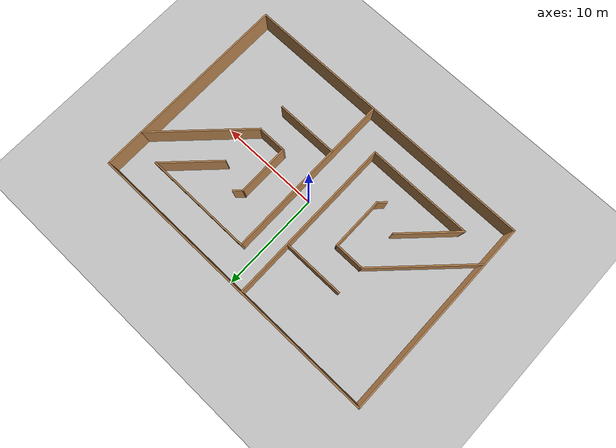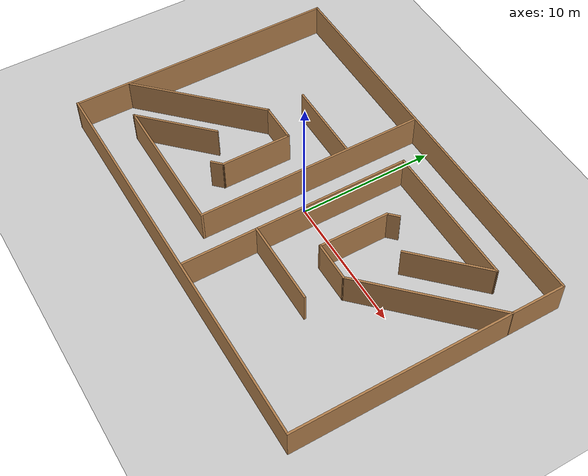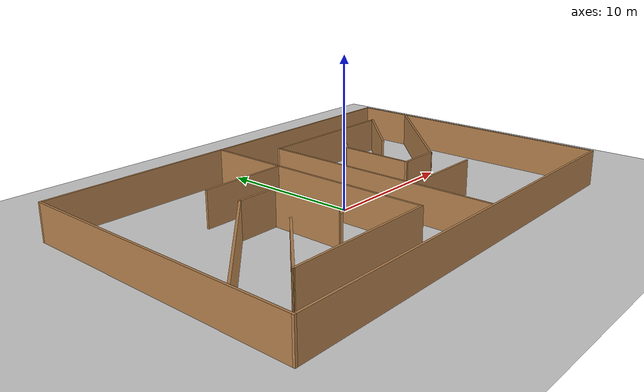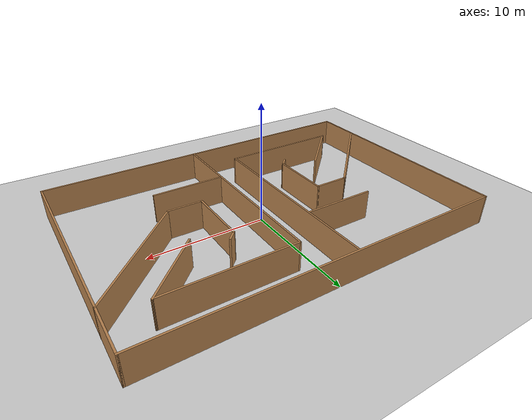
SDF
<sdf version="1.6">
 <world name="default">
  <light name="sun" type="directional">
   <pose>0 0 10 0 -0 0</pose>
   <diffuse>0.8 0.8 0.8 1</diffuse>
   <specular>0.2 0.2 0.2 1</specular>
   <attenuation>
    <range>1000</range>
    <constant>0.9</constant>
    <linear>0.01</linear>
    <quadratic>0.001</quadratic>
   </attenuation>
   <direction>-0.5 0.1 -0.9</direction>
  </light>
  <model name="ground_plane">
   <static>1</static>
   <link name="link">
    <collision name="collision">
     <geometry><plane><normal>0 0 1</normal><size>100 100</size></plane></geometry>
     <surface>
      <contact><collide_bitmask>65535</collide_bitmask></contact>
      <friction><ode><mu>100</mu><mu2>50</mu2></ode></friction>
     </surface>
    </collision>
    <visual name="visual">
     <cast_shadows>0</cast_shadows>
     <geometry><plane><normal>0 0 1</normal><size>100 100</size></plane></geometry>
     <material>
      <script><uri>file://media/materials/scripts/gazebo.material</uri><name>Gazebo/Grey</name></script>
     </material>
    </visual>
   </link>
  </model>
  <gravity>0 0 -9.8</gravity>
  <magnetic_field>6e-06 2.3e-05 -4.2e-05</magnetic_field>
  <atmosphere type="adiabatic"/>
  <physics name="default_physics" default="0" type="ode">
   <max_step_size>0.001</max_step_size>
   <real_time_factor>1</real_time_factor>
   <real_time_update_rate>1000</real_time_update_rate>
  </physics>
  <scene><ambient>0.4 0.4 0.4 1</ambient><background>0.7 0.7 0.7 1</background><shadows>1</shadows></scene>
  <spherical_coordinates>
   <surface_model>EARTH_WGS84</surface_model>
   <latitude_deg>0</latitude_deg>
   <longitude_deg>0</longitude_deg>
   <elevation>0</elevation>
   <heading_deg>0</heading_deg>
  </spherical_coordinates>
  <physics name="default_physics" default="0" type="ode">
   <ode>
    <solver>
     <type>quick</type>
     <iters>20</iters>
     <sor>1.3</sor>
     <use_dynamic_moi_rescaling>0</use_dynamic_moi_rescaling>
    </solver>
    <constraints>
     <cfm>0</cfm>
     <erp>0.2</erp>
     <contact_max_correcting_vel>100</contact_max_correcting_vel>
     <contact_surface_layer>0.001</contact_surface_layer>
    </constraints>
   </ode>
   <max_step_size>0.002</max_step_size>
   <real_time_factor>1</real_time_factor>
   <real_time_update_rate>500</real_time_update_rate>
  </physics>
  <audio><device>default</device></audio>
  <model name="office_maze">
   <link name="Wall_2">
    <collision name="Wall_2_Collision">
     <geometry><box><size>30 0.15 2.5</size></box></geometry>
     <pose>0 0 1.25 0 -0 0</pose>
    </collision>
    <visual name="Wall_2_Visual">
     <pose>0 0 1.25 0 -0 0</pose>
     <geometry><box><size>30 0.15 2.5</size></box></geometry>
     <material>
      <script><uri>file://media/materials/scripts/gazebo.material</uri><name>Gazebo/Wood</name></script>
      <ambient>1 1 1 1</ambient>
     </material>
    </visual>
    <pose>-0.01144 9.925 0 0 -0 0</pose>
   </link>
   <link name="Wall_24">
    <collision name="Wall_24_Collision">
     <geometry><box><size>17 0.15 2.5</size></box></geometry>
     <pose>0 0 1.25 0 -0 0</pose>
    </collision>
    <visual name="Wall_24_Visual">
     <pose>0 0 1.25 0 -0 0</pose>
     <geometry><box><size>17 0.15 2.5</size></box></geometry>
     <material>
      <script><uri>file://media/materials/scripts/gazebo.material</uri><name>Gazebo/Wood</name></script>
      <ambient>1 1 1 1</ambient>
     </material>
    </visual>
    <pose>1.30871 -1.38174 0 0 0 -1.5708</pose>
   </link>
   <link name="Wall_26">
    <collision name="Wall_26_Collision">
     <geometry><box><size>17 0.15 2.5</size></box></geometry>
     <pose>0 0 1.25 0 -0 0</pose>
    </collision>
    <visual name="Wall_26_Visual">
     <pose>0 0 1.25 0 -0 0</pose>
     <geometry><box><size>17 0.15 2.5</size></box></geometry>
     <material>
      <script><uri>file://media/materials/scripts/gazebo.material</uri><name>Gazebo/Wood</name></script>
      <ambient>1 1 1 1</ambient>
     </material>
    </visual>
    <pose>-1.5178 1.48266 0 0 0 -1.5708</pose>
   </link>
   <link name="Wall_27">
    <collision name="Wall_27_Collision">
     <geometry><box><size>10.5 0.15 2.5</size></box></geometry>
     <pose>0 0 1.25 0 -0 0</pose>
    </collision>
    <visual name="Wall_27_Visual">
     <pose>0 0 1.25 0 -0 0</pose>
     <geometry><box><size>10.5 0.15 2.5</size></box></geometry>
     <material>
      <script><uri>file://media/materials/scripts/gazebo.material</uri><name>Gazebo/Wood</name></script>
      <ambient>1 1 1 1</ambient>
     </material>
    </visual>
    <pose>-6.6928 -6.94234 0 0 -0 3.14159</pose>
   </link>
   <link name="Wall_29">
    <collision name="Wall_29_Collision">
     <geometry><box><size>10.75 0.15 2.5</size></box></geometry>
     <pose>0 0 1.25 0 -0 0</pose>
    </collision>
    <visual name="Wall_29_Visual">
     <pose>0 0 1.25 0 -0 0</pose>
     <geometry><box><size>10.75 0.15 2.5</size></box></geometry>
     <material>
      <script><uri>file://media/materials/scripts/gazebo.material</uri><name>Gazebo/Wood</name></script>
      <ambient>1 1 1 1</ambient>
     </material>
    </visual>
    <pose>6.60871 7.04326 0 0 -0 0</pose>
   </link>
   <link name="Wall_3">
    <collision name="Wall_3_Collision">
     <geometry><box><size>20 0.15 2.5</size></box></geometry>
     <pose>0 0 1.25 0 -0 0</pose>
    </collision>
    <visual name="Wall_3_Visual">
     <pose>0 0 1.25 0 -0 0</pose>
     <geometry><box><size>20 0.15 2.5</size></box></geometry>
     <material>
      <script><uri>file://media/materials/scripts/gazebo.material</uri><name>Gazebo/Wood</name></script>
      <ambient>1 1 1 1</ambient>
     </material>
    </visual>
    <pose>14.9136 0 0 0 0 -1.5708</pose>
   </link>
   <link name="Wall_4">
    <collision name="Wall_4_Collision">
     <geometry><box><size>30 0.15 2.5</size></box></geometry>
     <pose>0 0 1.25 0 -0 0</pose>
    </collision>
    <visual name="Wall_4_Visual">
     <pose>0 0 1.25 0 -0 0</pose>
     <geometry><box><size>30 0.15 2.5</size></box></geometry>
     <material>
      <script><uri>file://media/materials/scripts/gazebo.material</uri><name>Gazebo/Wood</name></script>
      <ambient>1 1 1 1</ambient>
     </material>
    </visual>
    <pose>-0.01144 -9.925 0 0 -0 3.14159</pose>
   </link>
   <link name="Wall_41">
    <collision name="Wall_41_Collision">
     <geometry><box><size>6.25 0.15 2.5</size></box></geometry>
     <pose>0 0 1.25 0 -0 0</pose>
    </collision>
    <visual name="Wall_41_Visual">
     <pose>0 0 1.25 0 -0 0</pose>
     <geometry><box><size>6.25 0.15 2.5</size></box></geometry>
     <material>
      <script><uri>file://media/materials/scripts/gazebo.material</uri><name>Gazebo/Wood</name></script>
      <ambient>1 1 1 1</ambient>
     </material>
    </visual>
    <pose>-9.71112 -4.78567 0 0 -0 0.785398</pose>
   </link>
   <link name="Wall_44">
    <collision name="Wall_44_Collision">
     <geometry><box><size>10.5 0.15 2.5</size></box></geometry>
     <pose>0 0 1.25 0 -0 0</pose>
    </collision>
    <visual name="Wall_44_Visual">
     <pose>0 0 1.25 0 -0 0</pose>
     <geometry><box><size>10.5 0.15 2.5</size></box></geometry>
     <material>
      <script><uri>file://media/materials/scripts/gazebo.material</uri><name>Gazebo/Wood</name></script>
      <ambient>1 1 1 1</ambient>
     </material>
    </visual>
    <pose>-11.1784 -2.2224 0 0 -0 0.785398</pose>
   </link>
   <link name="Wall_46">
    <collision name="Wall_46_Collision">
     <geometry><box><size>3 0.15 2.5</size></box></geometry>
     <pose>0 0 1.25 0 -0 0</pose>
    </collision>
    <visual name="Wall_46_Visual">
     <pose>0 0 1.25 0 -0 0</pose>
     <geometry><box><size>3 0.15 2.5</size></box></geometry>
     <material>
      <script><uri>file://media/materials/scripts/gazebo.material</uri><name>Gazebo/Wood</name></script>
      <ambient>1 1 1 1</ambient>
     </material>
    </visual>
    <pose>-6.09409 1.43687 0 0 -0 0</pose>
   </link>
   <link name="Wall_47">
    <collision name="Wall_47_Collision">
     <geometry><box><size>5.25 0.15 2.5</size></box></geometry>
     <pose>0 0 1.25 0 -0 0</pose>
    </collision>
    <visual name="Wall_47_Visual">
     <pose>0 0 1.25 0 -0 0</pose>
     <geometry><box><size>5.25 0.15 2.5</size></box></geometry>
     <material>
      <script><uri>file://media/materials/scripts/gazebo.material</uri><name>Gazebo/Wood</name></script>
      <ambient>1 1 1 1</ambient>
     </material>
    </visual>
    <pose>-4.66909 -1.11313 0 0 0 -1.5708</pose>
   </link>
   <link name="Wall_5">
    <collision name="Wall_5_Collision">
     <geometry><box><size>20 0.15 2.5</size></box></geometry>
     <pose>0 0 1.25 0 -0 0</pose>
    </collision>
    <visual name="Wall_5_Visual">
     <pose>0 0 1.25 0 -0 0</pose>
     <geometry><box><size>20 0.15 2.5</size></box></geometry>
     <material>
      <script><uri>file://media/materials/scripts/gazebo.material</uri><name>Gazebo/Wood</name></script>
      <ambient>1 1 1 1</ambient>
     </material>
    </visual>
    <pose>-14.9364 0 0 0 -0 1.5708</pose>
   </link>
   <link name="Wall_52">
    <collision name="Wall_52_Collision">
     <geometry><box><size>1 0.15 2.5</size></box></geometry>
     <pose>0 0 1.25 0 -0 0</pose>
    </collision>
    <visual name="Wall_52_Visual">
     <pose>0 0 1.25 0 -0 0</pose>
     <geometry><box><size>1 0.15 2.5</size></box></geometry>
     <material>
      <script><uri>file://media/materials/scripts/gazebo.material</uri><name>Gazebo/Wood</name></script>
      <ambient>1 1 1 1</ambient>
     </material>
    </visual>
    <pose>-4.96961 -3.96365 0 0 0 -2.35619</pose>
   </link>
   <link name="Wall_58">
    <collision name="Wall_58_Collision">
     <geometry><box><size>6 0.15 2.5</size></box></geometry>
     <pose>0 0 1.25 0 -0 0</pose>
    </collision>
    <visual name="Wall_58_Visual">
     <pose>0 0 1.25 0 -0 0</pose>
     <geometry><box><size>6 0.15 2.5</size></box></geometry>
     <material>
      <script><uri>file://media/materials/scripts/gazebo.material</uri><name>Gazebo/Wood</name></script>
      <ambient>1 1 1 1</ambient>
     </material>
    </visual>
    <pose>-4.59409 4.28687 0 0 -0 0</pose>
   </link>
   <link name="Wall_61">
    <collision name="Wall_61_Collision">
     <geometry><box><size>6.25 0.15 2.5</size></box></geometry>
     <pose>0 0 1.25 0 -0 0</pose>
    </collision>
    <visual name="Wall_61_Visual">
     <pose>0 0 1.25 0 -0 0</pose>
     <geometry><box><size>6.25 0.15 2.5</size></box></geometry>
     <material>
      <script><uri>file://media/materials/scripts/gazebo.material</uri><name>Gazebo/Wood</name></script>
      <ambient>1 1 1 1</ambient>
     </material>
    </visual>
    <pose>9.75204 4.88659 0 0 0 -2.35619</pose>
   </link>
   <link name="Wall_65">
    <collision name="Wall_65_Collision">
     <geometry><box><size>10.75 0.15 2.5</size></box></geometry>
     <pose>0 0 1.25 0 -0 0</pose>
    </collision>
    <visual name="Wall_65_Visual">
     <pose>0 0 1.25 0 -0 0</pose>
     <geometry><box><size>10.75 0.15 2.5</size></box></geometry>
     <material>
      <script><uri>file://media/materials/scripts/gazebo.material</uri><name>Gazebo/Wood</name></script>
      <ambient>1 1 1 1</ambient>
     </material>
    </visual>
    <pose>11.1577 2.20911 0 0 0 -2.35619</pose>
   </link>
   <link name="Wall_67">
    <collision name="Wall_67_Collision">
     <geometry><box><size>3 0.15 2.5</size></box></geometry>
     <pose>0 0 1.25 0 -0 0</pose>
    </collision>
    <visual name="Wall_67_Visual">
     <pose>0 0 1.25 0 -0 0</pose>
     <geometry><box><size>3 0.15 2.5</size></box></geometry>
     <material>
      <script><uri>file://media/materials/scripts/gazebo.material</uri><name>Gazebo/Wood</name></script>
      <ambient>1 1 1 1</ambient>
     </material>
    </visual>
    <pose>5.98504 -1.53855 0 0 -0 3.14159</pose>
   </link>
   <link name="Wall_68">
    <collision name="Wall_68_Collision">
     <geometry><box><size>5.25 0.15 2.5</size></box></geometry>
     <pose>0 0 1.25 0 -0 0</pose>
    </collision>
    <visual name="Wall_68_Visual">
     <pose>0 0 1.25 0 -0 0</pose>
     <geometry><box><size>5.25 0.15 2.5</size></box></geometry>
     <material>
      <script><uri>file://media/materials/scripts/gazebo.material</uri><name>Gazebo/Wood</name></script>
      <ambient>1 1 1 1</ambient>
     </material>
    </visual>
    <pose>4.56004 1.01145 0 0 -0 1.5708</pose>
   </link>
   <link name="Wall_69">
    <collision name="Wall_69_Collision">
     <geometry><box><size>1 0.15 2.5</size></box></geometry>
     <pose>0 0 1.25 0 -0 0</pose>
    </collision>
    <visual name="Wall_69_Visual">
     <pose>0 0 1.25 0 -0 0</pose>
     <geometry><box><size>1 0.15 2.5</size></box></geometry>
     <material>
      <script><uri>file://media/materials/scripts/gazebo.material</uri><name>Gazebo/Wood</name></script>
      <ambient>1 1 1 1</ambient>
     </material>
    </visual>
    <pose>4.86056 3.86197 0 0 -0 0.785398</pose>
   </link>
   <link name="Wall_73">
    <collision name="Wall_73_Collision">
     <geometry><box><size>6.25 0.15 2.5</size></box></geometry>
     <pose>0 0 1.25 0 -0 0</pose>
    </collision>
    <visual name="Wall_73_Visual">
     <pose>0 0 1.25 0 -0 0</pose>
     <geometry><box><size>6.25 0.15 2.5</size></box></geometry>
     <material>
      <script><uri>file://media/materials/scripts/gazebo.material</uri><name>Gazebo/Wood</name></script>
      <ambient>1 1 1 1</ambient>
     </material>
    </visual>
    <pose>4.36004 -4.38855 0 0 -0 3.14159</pose>
   </link>
   <static>1</static>
  </model>
 </world>
</sdf>
